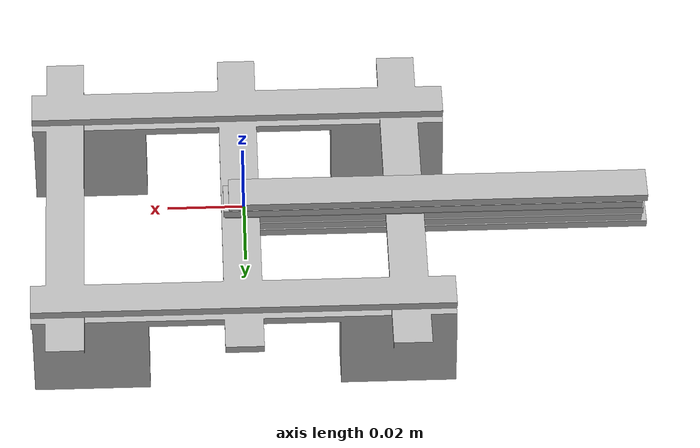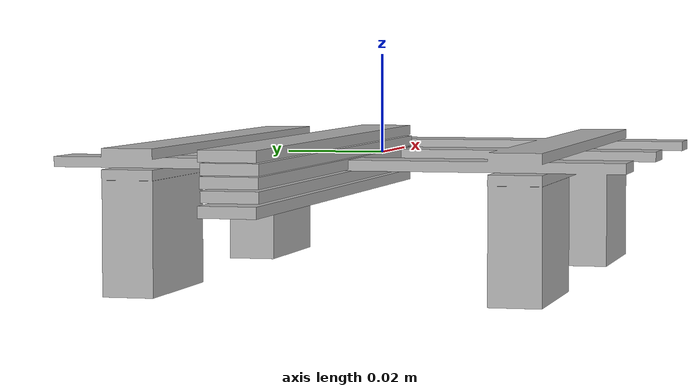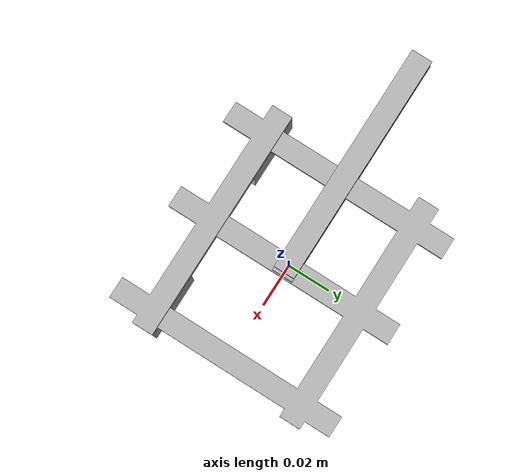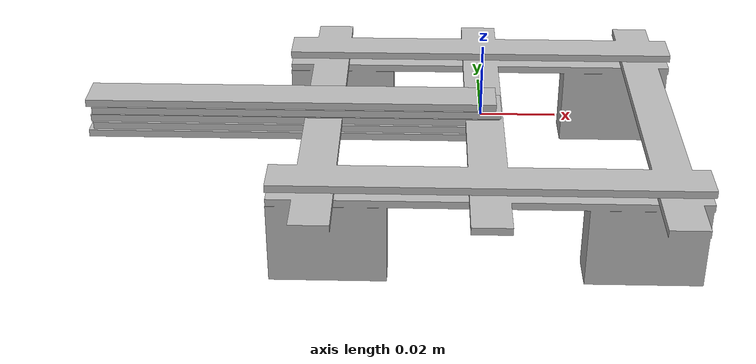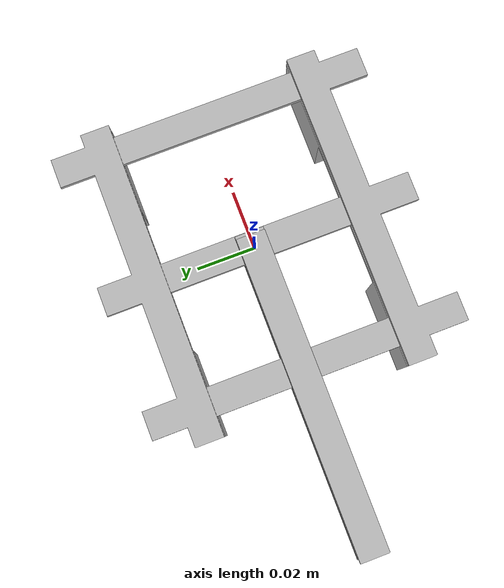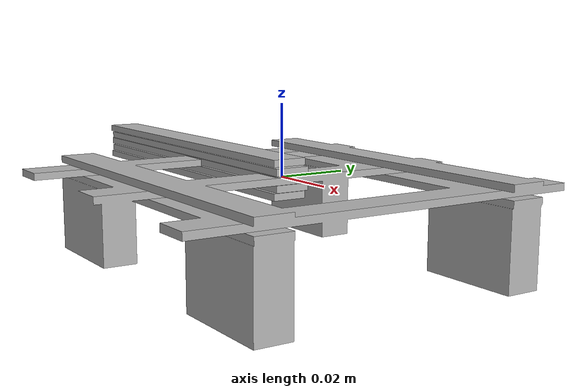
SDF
<sdf version="1.9">
<model name="arm" canonical_link="root.000">
  <joint name="joint0" type="revolute">
    <pose relative_to="root.000">0.00089 -0.00025 0.00205 -3.14159 -0.00000 1.57062</pose>
    <parent>root.000</parent>
    <child>link1</child>
    <axis>
      <limit>
        <lower>-3.14000</lower>
        <upper>3.14000</upper>
        <effort>0.00000</effort>
        <velocity>0.00000</velocity>
      </limit>
      <xyz>0.00000 0.00000 -1.00000</xyz>
    </axis>
  </joint>
  <joint name="joint1" type="revolute">
    <pose relative_to="link1">-0.00012 -0.00014 -0.02442 1.57082 -0.00009 -1.57089</pose>
    <parent>link1</parent>
    <child>link2</child>
    <axis>
      <limit>
        <lower>-3.14000</lower>
        <upper>3.14000</upper>
        <effort>0.00000</effort>
        <velocity>0.00000</velocity>
      </limit>
      <xyz>0.00000 0.00000 -1.00000</xyz>
    </axis>
  </joint>
  <joint name="joint3" type="revolute">
    <pose relative_to="link2">-0.09876 0.00001 -0.00008 0.00000 0.00000 0.00000</pose>
    <parent>link2</parent>
    <child>link3</child>
    <axis>
      <limit>
        <lower>-3.14000</lower>
        <upper>3.14000</upper>
        <effort>0.00000</effort>
        <velocity>0.00000</velocity>
      </limit>
      <xyz>0.00000 0.00000 -1.00000</xyz>
    </axis>
  </joint>
  <joint name="joint4" type="revolute">
    <pose relative_to="link3">-0.09983 0.00001 -0.00027 -0.00000 -0.00000 -0.00000</pose>
    <parent>link3</parent>
    <child>link4</child>
    <axis>
      <limit>
        <lower>-3.14000</lower>
        <upper>3.14000</upper>
        <effort>0.00000</effort>
        <velocity>0.00000</velocity>
      </limit>
      <xyz>0.00000 0.00000 -1.00000</xyz>
    </axis>
  </joint>
  <link name="link1">
    <inertial>
      <inertia>
        <ixx>0.00100</ixx>
        <ixy>-0.00000</ixy>
        <ixz>-0.00000</ixz>
        <iyy>0.00100</iyy>
        <iyz>0.00000</iyz>
        <izz>0.00100</izz>
      </inertia>
      <pose relative_to="link1">-0.00000 -0.00000 -0.00000 0.00000 0.00000 0.00000</pose>
      <mass>0.20000</mass>
    </inertial>
  </link>
  <link name="link2">
    <inertial>
      <inertia>
        <ixx>0.00100</ixx>
        <ixy>-0.00000</ixy>
        <ixz>0.00000</ixz>
        <iyy>0.00100</iyy>
        <iyz>-0.00000</iyz>
        <izz>0.00100</izz>
      </inertia>
      <pose relative_to="link2">-0.00000 0.00000 0.00000 0.00000 0.00000 0.00000</pose>
      <mass>0.20000</mass>
    </inertial>
    <visual name="link_2">
      <pose relative_to="link2">-0.00000 0.00000 -0.00000 -0.00002 -0.00000 0.00000</pose>
      <geometry>
        <mesh>
          <uri>../meshes/stl/Cube.010.stl</uri>
          <scale>1.00000 1.00000 1.00000</scale>
        </mesh>
      </geometry>
    </visual>
  </link>
  <link name="link3">
    <inertial>
      <inertia>
        <ixx>0.00100</ixx>
        <ixy>0.00000</ixy>
        <ixz>0.00000</ixz>
        <iyy>0.00100</iyy>
        <iyz>0.00000</iyz>
        <izz>0.00100</izz>
      </inertia>
      <pose relative_to="link3">-0.00000 -0.00000 0.00000 0.00000 0.00000 0.00000</pose>
      <mass>0.20000</mass>
    </inertial>
    <visual name="link_3">
      <pose relative_to="link3">-0.00000 -0.00000 -0.00000 -0.00002 -0.00000 0.00000</pose>
      <geometry>
        <mesh>
          <uri>../meshes/stl/Cube.013.stl</uri>
          <scale>1.00000 1.00000 1.00000</scale>
        </mesh>
      </geometry>
    </visual>
  </link>
  <link name="link4">
    <visual name="link_4">
      <pose relative_to="link4">-0.00000 0.00000 0.00000 -0.00002 -0.00000 0.00000</pose>
      <geometry>
        <mesh>
          <uri>../meshes/stl/Cube.014.stl</uri>
          <scale>1.00000 1.00000 1.00000</scale>
        </mesh>
      </geometry>
    </visual>
  </link>
  <link name="root.000">
    <visual name="base">
      <pose relative_to="root.000">-0.00000 0.00000 0.00000 0.00000 0.00000 -0.00000</pose>
      <geometry>
        <mesh>
          <uri>../meshes/stl/Cube.018.stl</uri>
          <scale>1.00000 1.00000 1.00000</scale>
        </mesh>
      </geometry>
    </visual>
  </link>
  <plugin filename="gz-sim-joint-position-controller-system" name="gz::sim::systems::JointPositionController">
    <joint_name>joint0</joint_name>
    <p_gain>20.00000</p_gain>
    <i_gain>0.00000</i_gain>
    <d_gain>0.00000</d_gain>
  </plugin>
  <plugin filename="gz-sim-joint-position-controller-system" name="gz::sim::systems::JointPositionController">
    <joint_name>joint1</joint_name>
    <p_gain>20.00000</p_gain>
    <i_gain>0.00000</i_gain>
    <d_gain>0.00000</d_gain>
  </plugin>
  <plugin filename="gz-sim-joint-position-controller-system" name="gz::sim::systems::JointPositionController">
    <joint_name>joint3</joint_name>
    <p_gain>20.00000</p_gain>
    <i_gain>0.00000</i_gain>
    <d_gain>0.00000</d_gain>
  </plugin>
  <plugin filename="gz-sim-joint-position-controller-system" name="gz::sim::systems::JointPositionController">
    <joint_name>joint4</joint_name>
    <p_gain>20.00000</p_gain>
    <i_gain>0.00000</i_gain>
    <d_gain>0.00000</d_gain>
  </plugin>
</model>
</sdf>
